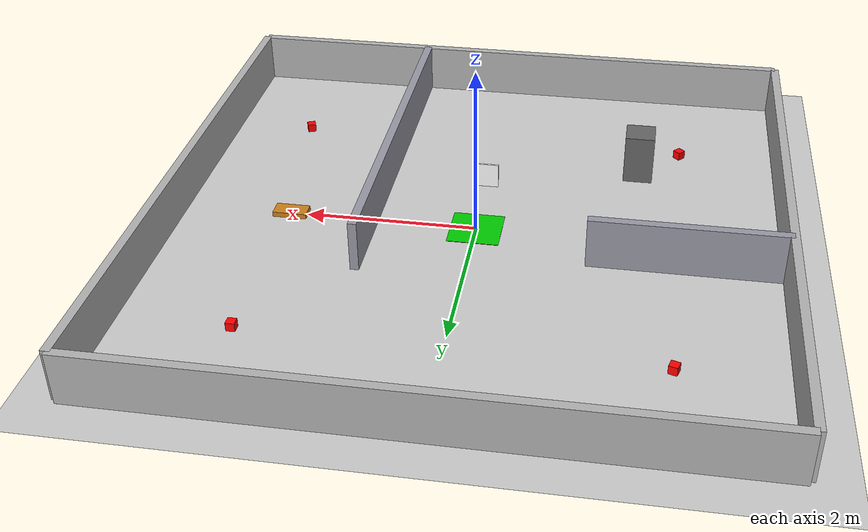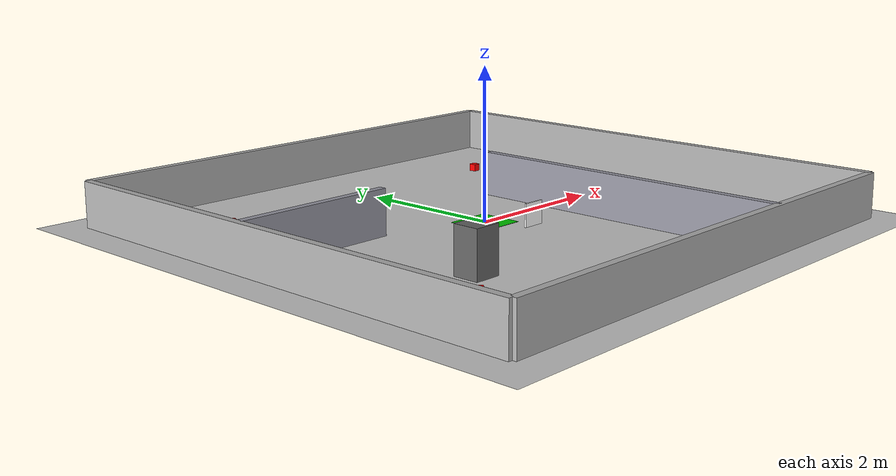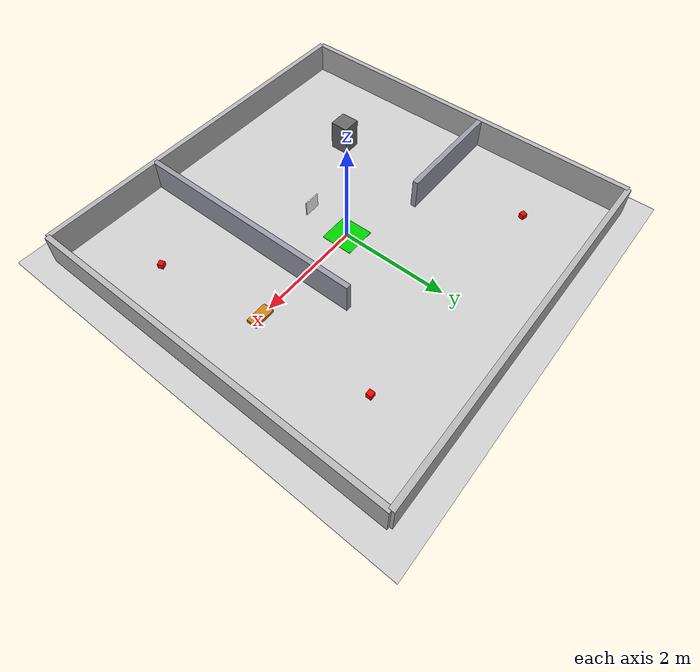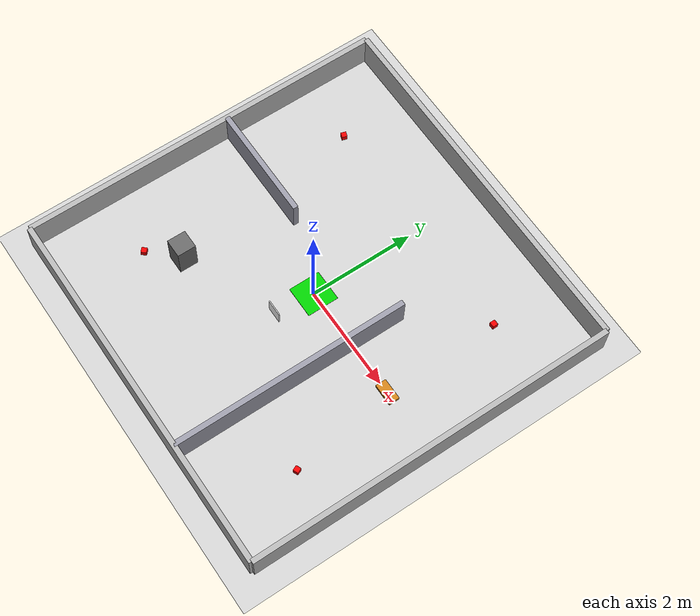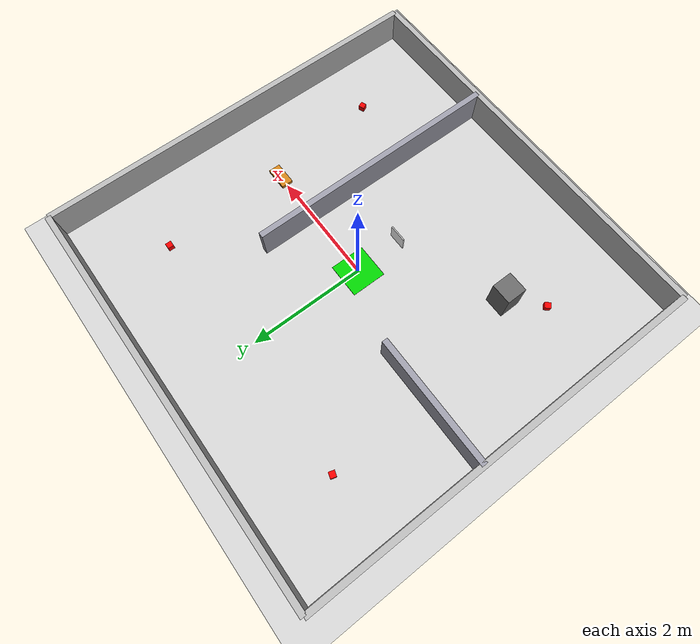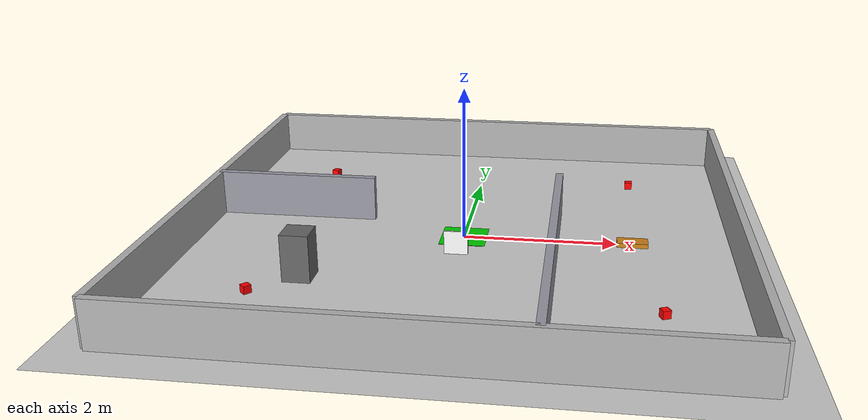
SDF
<?xml version="1.0" ?>
<sdf version="1.6">
  <world name="botzilla_world">
    <!-- Global light source using Fuel URI -->
    <include>
      <uri>https://fuel.gazebosim.org/1.0/OpenRobotics/models/Sun</uri>
    </include>
    <!-- Ground plane using Fuel URI -->
    <include>
      <uri>https://fuel.gazebosim.org/1.0/OpenRobotics/models/Ground Plane</uri>
    </include>

    <!-- Home / Drop-Off Zone at Origin (0.0, 0.0)                 -->
    <model name="drop_off_zone">
      <static>true</static>
      <pose>0.0 0.0 0.0025 0 0 0</pose>
      <link name="link">
        <visual name="visual">
          <geometry>
            <box>
              <size>0.6 0.6 0.005</size>
            </box>
          </geometry>
          <material>
            <ambient>0 0.8 0 1</ambient> <!-- Green home zone -->
          </material>
        </visual>
      </link>
    </model>

    <!-- AprilTag / Marker Panel behind home zone -->
    <model name="drop_off_wall_panel">
      <static>true</static>
      <pose>0.0 -0.8 0.25 0 0 0</pose>
      <link name="link">
        <visual name="visual">
          <geometry>
            <box>
              <size>0.3 0.02 0.3</size>
            </box>
          </geometry>
          <material>
            <ambient>1 1 1 1</ambient> <!-- White panel reference -->
          </material>
        </visual>
      </link>
    </model>

    <!-- N Collectible Target Cubes (N = 4)                        -->
    <!-- Scattered across different rooms to test frontier search  -->

    <!-- Cube 1: East Room (Upper) -->
    <model name="cube_1">
      <pose>2.2 2.2 0.05 0 0 0</pose>
      <link name="link">
        <inertial>
          <mass>0.05</mass>
          <inertia>
            <ixx>0.00008</ixx>
            <ixy>0</ixy>
            <ixz>0</ixz>
            <iyy>0.00008</iyy>
            <iyz>0</iyz>
            <izz>0.00008</izz>
          </inertia>
        </inertial>
        <collision name="collision">
          <geometry>
            <box>
              <size>0.1 0.1 0.1</size>
            </box>
          </geometry>
        </collision>
        <visual name="visual">
          <geometry>
            <box>
              <size>0.1 0.1 0.1</size>
            </box>
          </geometry>
          <material>
            <ambient>1 0 0 1</ambient> <!-- Red cube -->
            <diffuse>1 0 0 1</diffuse>
          </material>
        </visual>
      </link>
    </model>

    <!-- Cube 2: East Room (Lower behind central partition) -->
    <model name="cube_2">
      <pose>2.5 -2.0 0.05 0 0 0.4</pose>
      <link name="link">
        <inertial>
          <mass>0.05</mass>
          <inertia>
            <ixx>0.00008</ixx>
            <ixy>0</ixy>
            <ixz>0</ixz>
            <iyy>0.00008</iyy>
            <iyz>0</iyz>
            <izz>0.00008</izz>
          </inertia>
        </inertial>
        <collision name="collision">
          <geometry>
            <box>
              <size>0.1 0.1 0.1</size>
            </box>
          </geometry>
        </collision>
        <visual name="visual">
          <geometry>
            <box>
              <size>0.1 0.1 0.1</size>
            </box>
          </geometry>
          <material>
            <ambient>1 0 0 1</ambient>
            <diffuse>1 0 0 1</diffuse>
          </material>
        </visual>
      </link>
    </model>

    <!-- Cube 3: Northwest Room -->
    <model name="cube_3">
      <pose>-2.3 2.2 0.05 0 0 -0.3</pose>
      <link name="link">
        <inertial>
          <mass>0.05</mass>
          <inertia>
            <ixx>0.00008</ixx>
            <ixy>0</ixy>
            <ixz>0</ixz>
            <iyy>0.00008</iyy>
            <iyz>0</iyz>
            <izz>0.00008</izz>
          </inertia>
        </inertial>
        <collision name="collision">
          <geometry>
            <box>
              <size>0.1 0.1 0.1</size>
            </box>
          </geometry>
        </collision>
        <visual name="visual">
          <geometry>
            <box>
              <size>0.1 0.1 0.1</size>
            </box>
          </geometry>
          <material>
            <ambient>1 0 0 1</ambient>
            <diffuse>1 0 0 1</diffuse>
          </material>
        </visual>
      </link>
    </model>

    <!-- Cube 4: Southwest Room -->
    <model name="cube_4">
      <pose>-2.3 -2.0 0.05 0 0 0.8</pose>
      <link name="link">
        <inertial>
          <mass>0.05</mass>
          <inertia>
            <ixx>0.00008</ixx>
            <ixy>0</ixy>
            <ixz>0</ixz>
            <iyy>0.00008</iyy>
            <iyz>0</iyz>
            <izz>0.00008</izz>
          </inertia>
        </inertial>
        <collision name="collision">
          <geometry>
            <box>
              <size>0.1 0.1 0.1</size>
            </box>
          </geometry>
        </collision>
        <visual name="visual">
          <geometry>
            <box>
              <size>0.1 0.1 0.1</size>
            </box>
          </geometry>
          <material>
            <ambient>1 0 0 1</ambient>
            <diffuse>1 0 0 1</diffuse>
          </material>
        </visual>
      </link>
    </model>

    <!-- Multi-Height Obstacles (Testing Sensor Fusion)            -->

    <!-- Normal 2D LiDAR Pillar (Detected by LiDAR /scan at z=12cm) -->
    <model name="pillar_1">
      <static>true</static>
      <pose>-1.8 -1.5 0.3 0 0 0</pose>
      <link name="link">
        <collision name="collision">
          <geometry>
            <box>
              <size>0.35 0.35 0.6</size>
            </box>
          </geometry>
        </collision>
        <visual name="visual">
          <geometry>
            <box>
              <size>0.35 0.35 0.6</size>
            </box>
          </geometry>
          <material>
            <ambient>0.4 0.4 0.4 1</ambient>
          </material>
        </visual>
      </link>
    </model>

    <!-- Low Floor Barrier (Below LiDAR plane z=12cm; caught by Kinect 3D VoxelLayer) -->
    <model name="low_barrier_1">
      <static>true</static>
      <pose>2.2 0.0 0.03 0 0 0</pose>
      <link name="link">
        <collision name="collision">
          <geometry>
            <box>
              <size>0.4 0.2 0.06</size>
            </box>
          </geometry>
        </collision>
        <visual name="visual">
          <geometry>
            <box>
              <size>0.4 0.2 0.06</size>
            </box>
          </geometry>
          <material>
            <ambient>0.8 0.5 0.1 1</ambient> <!-- Orange low obstacle -->
          </material>
        </visual>
      </link>
    </model>

    <!-- Interior Partitions (Creating Occluded Rooms & Doorways)  -->

    <!-- Central Partition Wall (x = 1.2, from y = -3.5 to y = 1.0) -->
    <model name="partition_central">
      <static>true</static>
      <pose>1.2 -1.25 0.3 0 0 0</pose>
      <link name="link">
        <collision name="collision">
          <geometry>
            <box>
              <size>0.1 4.5 0.6</size>
            </box>
          </geometry>
        </collision>
        <visual name="visual">
          <geometry>
            <box>
              <size>0.1 4.5 0.6</size>
            </box>
          </geometry>
          <material>
            <ambient>0.6 0.6 0.65 1</ambient>
          </material>
        </visual>
      </link>
    </model>

    <!-- West Partition Wall (y = 0.5, from x = -3.5 to x = -1.3) -->
    <model name="partition_room_west">
      <static>true</static>
      <pose>-2.4 0.5 0.3 0 0 0</pose>
      <link name="link">
        <collision name="collision">
          <geometry>
            <box>
              <size>2.2 0.1 0.6</size>
            </box>
          </geometry>
        </collision>
        <visual name="visual">
          <geometry>
            <box>
              <size>2.2 0.1 0.6</size>
            </box>
          </geometry>
          <material>
            <ambient>0.6 0.6 0.65 1</ambient>
          </material>
        </visual>
      </link>
    </model>

    <!-- Outer Arena Perimeter Walls (7.0m x 7.0m)                 -->

    <!-- North Wall -->
    <model name="wall_north">
      <static>true</static>
      <pose>0 3.5 0.3 0 0 0</pose>
      <link name="link">
        <collision name="collision">
          <geometry><box><size>7.0 0.1 0.6</size></box></geometry>
        </collision>
        <visual name="visual">
          <geometry><box><size>7.0 0.1 0.6</size></box></geometry>
          <material><ambient>0.7 0.7 0.7 1</ambient></material>
        </visual>
      </link>
    </model>

    <!-- South Wall -->
    <model name="wall_south">
      <static>true</static>
      <pose>0 -3.5 0.3 0 0 0</pose>
      <link name="link">
        <collision name="collision">
          <geometry><box><size>7.0 0.1 0.6</size></box></geometry>
        </collision>
        <visual name="visual">
          <geometry><box><size>7.0 0.1 0.6</size></box></geometry>
          <material><ambient>0.7 0.7 0.7 1</ambient></material>
        </visual>
      </link>
    </model>

    <!-- East Wall -->
    <model name="wall_east">
      <static>true</static>
      <pose>3.5 0 0.3 0 0 0</pose>
      <link name="link">
        <collision name="collision">
          <geometry><box><size>0.1 7.0 0.6</size></box></geometry>
        </collision>
        <visual name="visual">
          <geometry><box><size>0.1 7.0 0.6</size></box></geometry>
          <material><ambient>0.7 0.7 0.7 1</ambient></material>
        </visual>
      </link>
    </model>

    <!-- West Wall -->
    <model name="wall_west">
      <static>true</static>
      <pose>-3.5 0 0.3 0 0 0</pose>
      <link name="link">
        <collision name="collision">
          <geometry><box><size>0.1 7.0 0.6</size></box></geometry>
        </collision>
        <visual name="visual">
          <geometry><box><size>0.1 7.0 0.6</size></box></geometry>
          <material><ambient>0.7 0.7 0.7 1</ambient></material>
        </visual>
      </link>
    </model>

    <!-- Physics settings for high-precision differential drive & capture -->
    <physics type="ode">
      <real_time_update_rate>1000.0</real_time_update_rate>
      <max_step_size>0.001</max_step_size>
    </physics>
  </world>
</sdf>
